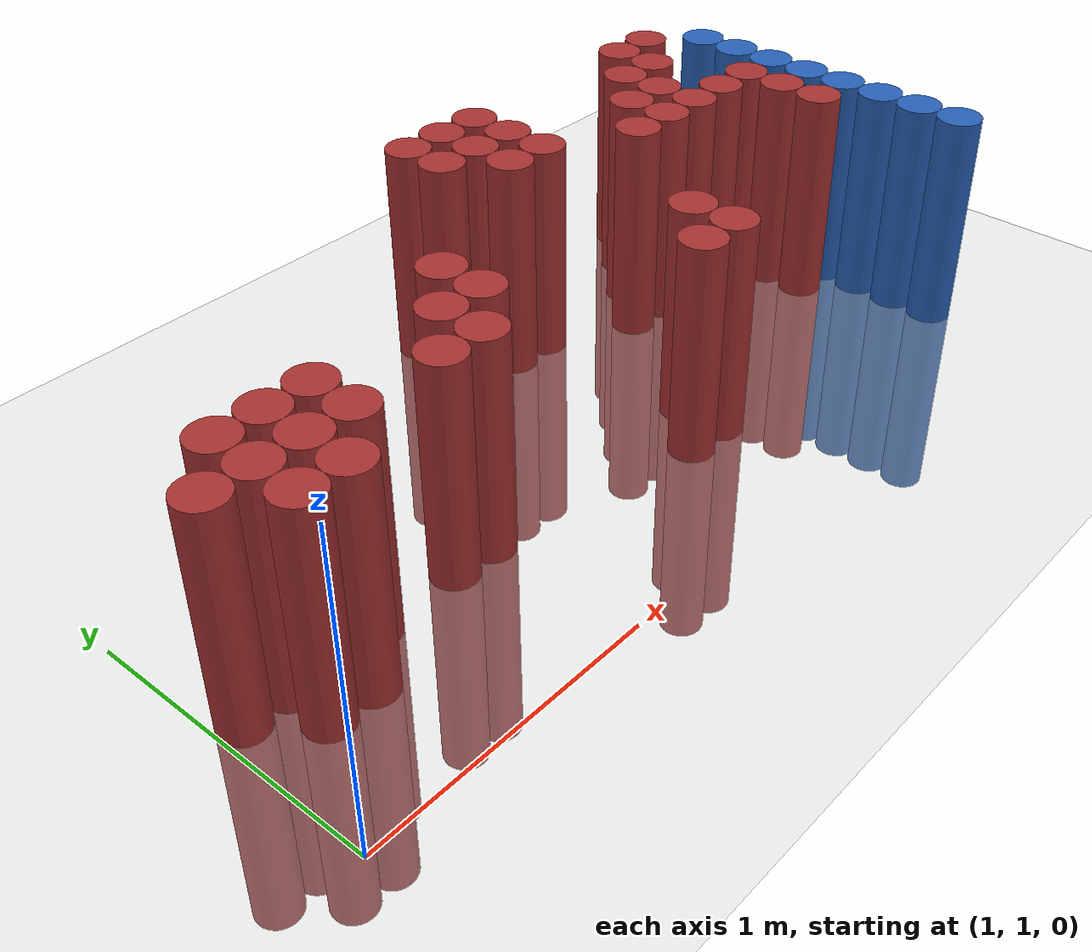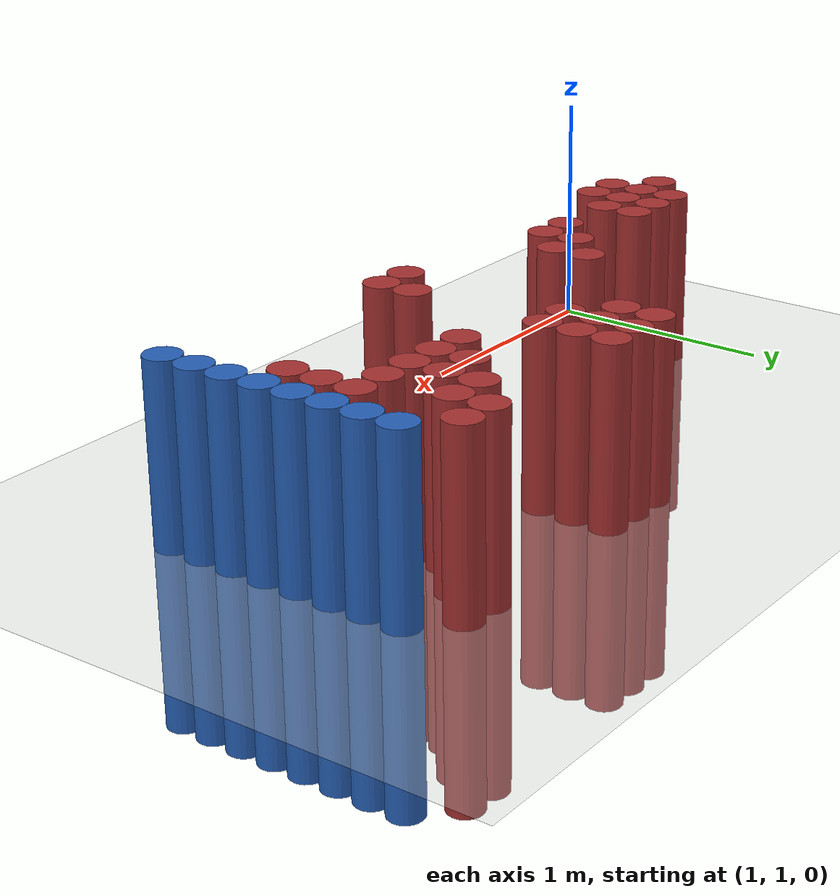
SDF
<sdf version="1.6">
 <world name="default">
  <model name="ground_plane">
   <static>1</static>
   <link name="link">
    <collision name="collision">
     <geometry><plane><normal>0 0 1</normal><size>100 100</size></plane></geometry>
     <surface><friction><ode><mu>100</mu><mu2>50</mu2></ode></friction></surface>
    </collision>
    <visual name="visual">
     <cast_shadows>0</cast_shadows>
     <geometry><plane><normal>0 0 1</normal><size>100 100</size></plane></geometry>
     <material>
      <script><uri>file://media/materials/scripts/gazebo.material</uri><name>Gazebo/Grey</name></script>
     </material>
    </visual>
   </link>
  </model>
  <model name="unit_cylinder_132">
   <static>1</static>
   <pose>3.925000 1.375000 0.000000 0.000000 0.000000 0.000000</pose>
   <link name="link">
    <inertial>
     <mass>1</mass>
     <inertia><ixx>0.145833</ixx><ixy>0</ixy><ixz>0</ixz><iyy>0.145833</iyy><iyz>0</iyz><izz>0.125</izz></inertia>
    </inertial>
    <collision name="collision">
     <geometry><cylinder><radius>0.075000</radius><length>1.5</length></cylinder></geometry>
    </collision>
    <visual name="visual">
     <geometry><cylinder><radius>0.075000</radius><length>1.5</length></cylinder></geometry>
     <material>
      <ambient>0.152000 0.379000 0.720000 1</ambient>
      <diffuse>0.152000 0.379000 0.720000 1</diffuse>
     </material>
     <material>
      <script><name>Gazebo/Grey</name><uri>file://media/materials/scripts/gazebo.material</uri></script>
     </material>
    </visual>
   </link>
  </model>
  <model name="unit_cylinder_134">
   <static>1</static>
   <pose>3.925000 1.525000 0.000000 0.000000 0.000000 0.000000</pose>
   <link name="link">
    <inertial>
     <mass>1</mass>
     <inertia><ixx>0.145833</ixx><ixy>0</ixy><ixz>0</ixz><iyy>0.145833</iyy><iyz>0</iyz><izz>0.125</izz></inertia>
    </inertial>
    <collision name="collision">
     <geometry><cylinder><radius>0.075000</radius><length>1.5</length></cylinder></geometry>
    </collision>
    <visual name="visual">
     <geometry><cylinder><radius>0.075000</radius><length>1.5</length></cylinder></geometry>
     <material>
      <ambient>0.152000 0.379000 0.720000 1</ambient>
      <diffuse>0.152000 0.379000 0.720000 1</diffuse>
     </material>
     <material>
      <script><name>Gazebo/Grey</name><uri>file://media/materials/scripts/gazebo.material</uri></script>
     </material>
    </visual>
   </link>
  </model>
  <model name="unit_cylinder_136">
   <static>1</static>
   <pose>3.925000 1.675000 0.000000 0.000000 0.000000 0.000000</pose>
   <link name="link">
    <inertial>
     <mass>1</mass>
     <inertia><ixx>0.145833</ixx><ixy>0</ixy><ixz>0</ixz><iyy>0.145833</iyy><iyz>0</iyz><izz>0.125</izz></inertia>
    </inertial>
    <collision name="collision">
     <geometry><cylinder><radius>0.075000</radius><length>1.5</length></cylinder></geometry>
    </collision>
    <visual name="visual">
     <geometry><cylinder><radius>0.075000</radius><length>1.5</length></cylinder></geometry>
     <material>
      <ambient>0.152000 0.379000 0.720000 1</ambient>
      <diffuse>0.152000 0.379000 0.720000 1</diffuse>
     </material>
     <material>
      <script><name>Gazebo/Grey</name><uri>file://media/materials/scripts/gazebo.material</uri></script>
     </material>
    </visual>
   </link>
  </model>
  <model name="unit_cylinder_138">
   <static>1</static>
   <pose>3.925000 1.825000 0.000000 0.000000 0.000000 0.000000</pose>
   <link name="link">
    <inertial>
     <mass>1</mass>
     <inertia><ixx>0.145833</ixx><ixy>0</ixy><ixz>0</ixz><iyy>0.145833</iyy><iyz>0</iyz><izz>0.125</izz></inertia>
    </inertial>
    <collision name="collision">
     <geometry><cylinder><radius>0.075000</radius><length>1.5</length></cylinder></geometry>
    </collision>
    <visual name="visual">
     <geometry><cylinder><radius>0.075000</radius><length>1.5</length></cylinder></geometry>
     <material>
      <ambient>0.152000 0.379000 0.720000 1</ambient>
      <diffuse>0.152000 0.379000 0.720000 1</diffuse>
     </material>
     <material>
      <script><name>Gazebo/Grey</name><uri>file://media/materials/scripts/gazebo.material</uri></script>
     </material>
    </visual>
   </link>
  </model>
  <model name="unit_cylinder_140">
   <static>1</static>
   <pose>3.925000 1.975000 0.000000 0.000000 0.000000 0.000000</pose>
   <link name="link">
    <inertial>
     <mass>1</mass>
     <inertia><ixx>0.145833</ixx><ixy>0</ixy><ixz>0</ixz><iyy>0.145833</iyy><iyz>0</iyz><izz>0.125</izz></inertia>
    </inertial>
    <collision name="collision">
     <geometry><cylinder><radius>0.075000</radius><length>1.5</length></cylinder></geometry>
    </collision>
    <visual name="visual">
     <geometry><cylinder><radius>0.075000</radius><length>1.5</length></cylinder></geometry>
     <material>
      <ambient>0.152000 0.379000 0.720000 1</ambient>
      <diffuse>0.152000 0.379000 0.720000 1</diffuse>
     </material>
     <material>
      <script><name>Gazebo/Grey</name><uri>file://media/materials/scripts/gazebo.material</uri></script>
     </material>
    </visual>
   </link>
  </model>
  <model name="unit_cylinder_142">
   <static>1</static>
   <pose>3.925000 2.125000 0.000000 0.000000 0.000000 0.000000</pose>
   <link name="link">
    <inertial>
     <mass>1</mass>
     <inertia><ixx>0.145833</ixx><ixy>0</ixy><ixz>0</ixz><iyy>0.145833</iyy><iyz>0</iyz><izz>0.125</izz></inertia>
    </inertial>
    <collision name="collision">
     <geometry><cylinder><radius>0.075000</radius><length>1.5</length></cylinder></geometry>
    </collision>
    <visual name="visual">
     <geometry><cylinder><radius>0.075000</radius><length>1.5</length></cylinder></geometry>
     <material>
      <ambient>0.152000 0.379000 0.720000 1</ambient>
      <diffuse>0.152000 0.379000 0.720000 1</diffuse>
     </material>
     <material>
      <script><name>Gazebo/Grey</name><uri>file://media/materials/scripts/gazebo.material</uri></script>
     </material>
    </visual>
   </link>
  </model>
  <model name="unit_cylinder_144">
   <static>1</static>
   <pose>3.925000 2.275000 0.000000 0.000000 0.000000 0.000000</pose>
   <link name="link">
    <inertial>
     <mass>1</mass>
     <inertia><ixx>0.145833</ixx><ixy>0</ixy><ixz>0</ixz><iyy>0.145833</iyy><iyz>0</iyz><izz>0.125</izz></inertia>
    </inertial>
    <collision name="collision">
     <geometry><cylinder><radius>0.075000</radius><length>1.5</length></cylinder></geometry>
    </collision>
    <visual name="visual">
     <geometry><cylinder><radius>0.075000</radius><length>1.5</length></cylinder></geometry>
     <material>
      <ambient>0.152000 0.379000 0.720000 1</ambient>
      <diffuse>0.152000 0.379000 0.720000 1</diffuse>
     </material>
     <material>
      <script><name>Gazebo/Grey</name><uri>file://media/materials/scripts/gazebo.material</uri></script>
     </material>
    </visual>
   </link>
  </model>
  <model name="unit_cylinder_363">
   <static>1</static>
   <pose>1.075000 1.525000 0.000000 0.000000 0.000000 0.000000</pose>
   <link name="link">
    <inertial>
     <mass>1</mass>
     <inertia><ixx>0.145833</ixx><ixy>0</ixy><ixz>0</ixz><iyy>0.145833</iyy><iyz>0</iyz><izz>0.125</izz></inertia>
    </inertial>
    <collision name="collision">
     <geometry><cylinder><radius>0.075000</radius><length>1.5</length></cylinder></geometry>
    </collision>
    <visual name="visual">
     <geometry><cylinder><radius>0.075000</radius><length>1.5</length></cylinder></geometry>
     <material>
      <ambient>0.648000 0.192000 0.192000 1</ambient>
      <diffuse>0.648000 0.192000 0.192000 1</diffuse>
     </material>
     <material>
      <script><name>Gazebo/Grey</name><uri>file://media/materials/scripts/gazebo.material</uri></script>
     </material>
    </visual>
   </link>
  </model>
  <model name="unit_cylinder_372">
   <static>1</static>
   <pose>1.225000 1.375000 0.000000 0.000000 0.000000 0.000000</pose>
   <link name="link">
    <inertial>
     <mass>1</mass>
     <inertia><ixx>0.145833</ixx><ixy>0</ixy><ixz>0</ixz><iyy>0.145833</iyy><iyz>0</iyz><izz>0.125</izz></inertia>
    </inertial>
    <collision name="collision">
     <geometry><cylinder><radius>0.075000</radius><length>1.5</length></cylinder></geometry>
    </collision>
    <visual name="visual">
     <geometry><cylinder><radius>0.075000</radius><length>1.5</length></cylinder></geometry>
     <material>
      <ambient>0.648000 0.192000 0.192000 1</ambient>
      <diffuse>0.648000 0.192000 0.192000 1</diffuse>
     </material>
     <material>
      <script><name>Gazebo/Grey</name><uri>file://media/materials/scripts/gazebo.material</uri></script>
     </material>
    </visual>
   </link>
  </model>
  <model name="unit_cylinder_373">
   <static>1</static>
   <pose>1.225000 1.525000 0.000000 0.000000 0.000000 0.000000</pose>
   <link name="link">
    <inertial>
     <mass>1</mass>
     <inertia><ixx>0.145833</ixx><ixy>0</ixy><ixz>0</ixz><iyy>0.145833</iyy><iyz>0</iyz><izz>0.125</izz></inertia>
    </inertial>
    <collision name="collision">
     <geometry><cylinder><radius>0.075000</radius><length>1.5</length></cylinder></geometry>
    </collision>
    <visual name="visual">
     <geometry><cylinder><radius>0.075000</radius><length>1.5</length></cylinder></geometry>
     <material>
      <ambient>0.648000 0.192000 0.192000 1</ambient>
      <diffuse>0.648000 0.192000 0.192000 1</diffuse>
     </material>
     <material>
      <script><name>Gazebo/Grey</name><uri>file://media/materials/scripts/gazebo.material</uri></script>
     </material>
    </visual>
   </link>
  </model>
  <model name="unit_cylinder_374">
   <static>1</static>
   <pose>1.225000 1.675000 0.000000 0.000000 0.000000 0.000000</pose>
   <link name="link">
    <inertial>
     <mass>1</mass>
     <inertia><ixx>0.145833</ixx><ixy>0</ixy><ixz>0</ixz><iyy>0.145833</iyy><iyz>0</iyz><izz>0.125</izz></inertia>
    </inertial>
    <collision name="collision">
     <geometry><cylinder><radius>0.075000</radius><length>1.5</length></cylinder></geometry>
    </collision>
    <visual name="visual">
     <geometry><cylinder><radius>0.075000</radius><length>1.5</length></cylinder></geometry>
     <material>
      <ambient>0.648000 0.192000 0.192000 1</ambient>
      <diffuse>0.648000 0.192000 0.192000 1</diffuse>
     </material>
     <material>
      <script><name>Gazebo/Grey</name><uri>file://media/materials/scripts/gazebo.material</uri></script>
     </material>
    </visual>
   </link>
  </model>
  <model name="unit_cylinder_380">
   <static>1</static>
   <pose>1.375000 1.375000 0.000000 0.000000 0.000000 0.000000</pose>
   <link name="link">
    <inertial>
     <mass>1</mass>
     <inertia><ixx>0.145833</ixx><ixy>0</ixy><ixz>0</ixz><iyy>0.145833</iyy><iyz>0</iyz><izz>0.125</izz></inertia>
    </inertial>
    <collision name="collision">
     <geometry><cylinder><radius>0.075000</radius><length>1.5</length></cylinder></geometry>
    </collision>
    <visual name="visual">
     <geometry><cylinder><radius>0.075000</radius><length>1.5</length></cylinder></geometry>
     <material>
      <ambient>0.648000 0.192000 0.192000 1</ambient>
      <diffuse>0.648000 0.192000 0.192000 1</diffuse>
     </material>
     <material>
      <script><name>Gazebo/Grey</name><uri>file://media/materials/scripts/gazebo.material</uri></script>
     </material>
    </visual>
   </link>
  </model>
  <model name="unit_cylinder_381">
   <static>1</static>
   <pose>1.375000 1.525000 0.000000 0.000000 0.000000 0.000000</pose>
   <link name="link">
    <inertial>
     <mass>1</mass>
     <inertia><ixx>0.145833</ixx><ixy>0</ixy><ixz>0</ixz><iyy>0.145833</iyy><iyz>0</iyz><izz>0.125</izz></inertia>
    </inertial>
    <collision name="collision">
     <geometry><cylinder><radius>0.075000</radius><length>1.5</length></cylinder></geometry>
    </collision>
    <visual name="visual">
     <geometry><cylinder><radius>0.075000</radius><length>1.5</length></cylinder></geometry>
     <material>
      <ambient>0.648000 0.192000 0.192000 1</ambient>
      <diffuse>0.648000 0.192000 0.192000 1</diffuse>
     </material>
     <material>
      <script><name>Gazebo/Grey</name><uri>file://media/materials/scripts/gazebo.material</uri></script>
     </material>
    </visual>
   </link>
  </model>
  <model name="unit_cylinder_382">
   <static>1</static>
   <pose>1.375000 1.675000 0.000000 0.000000 0.000000 0.000000</pose>
   <link name="link">
    <inertial>
     <mass>1</mass>
     <inertia><ixx>0.145833</ixx><ixy>0</ixy><ixz>0</ixz><iyy>0.145833</iyy><iyz>0</iyz><izz>0.125</izz></inertia>
    </inertial>
    <collision name="collision">
     <geometry><cylinder><radius>0.075000</radius><length>1.5</length></cylinder></geometry>
    </collision>
    <visual name="visual">
     <geometry><cylinder><radius>0.075000</radius><length>1.5</length></cylinder></geometry>
     <material>
      <ambient>0.648000 0.192000 0.192000 1</ambient>
      <diffuse>0.648000 0.192000 0.192000 1</diffuse>
     </material>
     <material>
      <script><name>Gazebo/Grey</name><uri>file://media/materials/scripts/gazebo.material</uri></script>
     </material>
    </visual>
   </link>
  </model>
  <model name="unit_cylinder_384">
   <static>1</static>
   <pose>1.525000 1.525000 0.000000 0.000000 0.000000 0.000000</pose>
   <link name="link">
    <inertial>
     <mass>1</mass>
     <inertia><ixx>0.145833</ixx><ixy>0</ixy><ixz>0</ixz><iyy>0.145833</iyy><iyz>0</iyz><izz>0.125</izz></inertia>
    </inertial>
    <collision name="collision">
     <geometry><cylinder><radius>0.075000</radius><length>1.5</length></cylinder></geometry>
    </collision>
    <visual name="visual">
     <geometry><cylinder><radius>0.075000</radius><length>1.5</length></cylinder></geometry>
     <material>
      <ambient>0.648000 0.192000 0.192000 1</ambient>
      <diffuse>0.648000 0.192000 0.192000 1</diffuse>
     </material>
     <material>
      <script><name>Gazebo/Grey</name><uri>file://media/materials/scripts/gazebo.material</uri></script>
     </material>
    </visual>
   </link>
  </model>
  <model name="unit_cylinder_385">
   <static>1</static>
   <pose>1.525000 1.675000 0.000000 0.000000 0.000000 0.000000</pose>
   <link name="link">
    <inertial>
     <mass>1</mass>
     <inertia><ixx>0.145833</ixx><ixy>0</ixy><ixz>0</ixz><iyy>0.145833</iyy><iyz>0</iyz><izz>0.125</izz></inertia>
    </inertial>
    <collision name="collision">
     <geometry><cylinder><radius>0.075000</radius><length>1.5</length></cylinder></geometry>
    </collision>
    <visual name="visual">
     <geometry><cylinder><radius>0.075000</radius><length>1.5</length></cylinder></geometry>
     <material>
      <ambient>0.648000 0.192000 0.192000 1</ambient>
      <diffuse>0.648000 0.192000 0.192000 1</diffuse>
     </material>
     <material>
      <script><name>Gazebo/Grey</name><uri>file://media/materials/scripts/gazebo.material</uri></script>
     </material>
    </visual>
   </link>
  </model>
  <model name="unit_cylinder_394">
   <static>1</static>
   <pose>1.825000 1.525000 0.000000 0.000000 0.000000 0.000000</pose>
   <link name="link">
    <inertial>
     <mass>1</mass>
     <inertia><ixx>0.145833</ixx><ixy>0</ixy><ixz>0</ixz><iyy>0.145833</iyy><iyz>0</iyz><izz>0.125</izz></inertia>
    </inertial>
    <collision name="collision">
     <geometry><cylinder><radius>0.075000</radius><length>1.5</length></cylinder></geometry>
    </collision>
    <visual name="visual">
     <geometry><cylinder><radius>0.075000</radius><length>1.5</length></cylinder></geometry>
     <material>
      <ambient>0.648000 0.192000 0.192000 1</ambient>
      <diffuse>0.648000 0.192000 0.192000 1</diffuse>
     </material>
     <material>
      <script><name>Gazebo/Grey</name><uri>file://media/materials/scripts/gazebo.material</uri></script>
     </material>
    </visual>
   </link>
  </model>
  <model name="unit_cylinder_398">
   <static>1</static>
   <pose>1.975000 1.525000 0.000000 0.000000 0.000000 0.000000</pose>
   <link name="link">
    <inertial>
     <mass>1</mass>
     <inertia><ixx>0.145833</ixx><ixy>0</ixy><ixz>0</ixz><iyy>0.145833</iyy><iyz>0</iyz><izz>0.125</izz></inertia>
    </inertial>
    <collision name="collision">
     <geometry><cylinder><radius>0.075000</radius><length>1.5</length></cylinder></geometry>
    </collision>
    <visual name="visual">
     <geometry><cylinder><radius>0.075000</radius><length>1.5</length></cylinder></geometry>
     <material>
      <ambient>0.648000 0.192000 0.192000 1</ambient>
      <diffuse>0.648000 0.192000 0.192000 1</diffuse>
     </material>
     <material>
      <script><name>Gazebo/Grey</name><uri>file://media/materials/scripts/gazebo.material</uri></script>
     </material>
    </visual>
   </link>
  </model>
  <model name="unit_cylinder_399">
   <static>1</static>
   <pose>1.975000 1.675000 0.000000 0.000000 0.000000 0.000000</pose>
   <link name="link">
    <inertial>
     <mass>1</mass>
     <inertia><ixx>0.145833</ixx><ixy>0</ixy><ixz>0</ixz><iyy>0.145833</iyy><iyz>0</iyz><izz>0.125</izz></inertia>
    </inertial>
    <collision name="collision">
     <geometry><cylinder><radius>0.075000</radius><length>1.5</length></cylinder></geometry>
    </collision>
    <visual name="visual">
     <geometry><cylinder><radius>0.075000</radius><length>1.5</length></cylinder></geometry>
     <material>
      <ambient>0.648000 0.192000 0.192000 1</ambient>
      <diffuse>0.648000 0.192000 0.192000 1</diffuse>
     </material>
     <material>
      <script><name>Gazebo/Grey</name><uri>file://media/materials/scripts/gazebo.material</uri></script>
     </material>
    </visual>
   </link>
  </model>
  <model name="unit_cylinder_401">
   <static>1</static>
   <pose>2.125000 1.675000 0.000000 0.000000 0.000000 0.000000</pose>
   <link name="link">
    <inertial>
     <mass>1</mass>
     <inertia><ixx>0.145833</ixx><ixy>0</ixy><ixz>0</ixz><iyy>0.145833</iyy><iyz>0</iyz><izz>0.125</izz></inertia>
    </inertial>
    <collision name="collision">
     <geometry><cylinder><radius>0.075000</radius><length>1.5</length></cylinder></geometry>
    </collision>
    <visual name="visual">
     <geometry><cylinder><radius>0.075000</radius><length>1.5</length></cylinder></geometry>
     <material>
      <ambient>0.648000 0.192000 0.192000 1</ambient>
      <diffuse>0.648000 0.192000 0.192000 1</diffuse>
     </material>
     <material>
      <script><name>Gazebo/Grey</name><uri>file://media/materials/scripts/gazebo.material</uri></script>
     </material>
    </visual>
   </link>
  </model>
  <model name="unit_cylinder_402">
   <static>1</static>
   <pose>2.125000 1.825000 0.000000 0.000000 0.000000 0.000000</pose>
   <link name="link">
    <inertial>
     <mass>1</mass>
     <inertia><ixx>0.145833</ixx><ixy>0</ixy><ixz>0</ixz><iyy>0.145833</iyy><iyz>0</iyz><izz>0.125</izz></inertia>
    </inertial>
    <collision name="collision">
     <geometry><cylinder><radius>0.075000</radius><length>1.5</length></cylinder></geometry>
    </collision>
    <visual name="visual">
     <geometry><cylinder><radius>0.075000</radius><length>1.5</length></cylinder></geometry>
     <material>
      <ambient>0.648000 0.192000 0.192000 1</ambient>
      <diffuse>0.648000 0.192000 0.192000 1</diffuse>
     </material>
     <material>
      <script><name>Gazebo/Grey</name><uri>file://media/materials/scripts/gazebo.material</uri></script>
     </material>
    </visual>
   </link>
  </model>
  <model name="unit_cylinder_414">
   <static>1</static>
   <pose>2.575000 2.275000 0.000000 0.000000 0.000000 0.000000</pose>
   <link name="link">
    <inertial>
     <mass>1</mass>
     <inertia><ixx>0.145833</ixx><ixy>0</ixy><ixz>0</ixz><iyy>0.145833</iyy><iyz>0</iyz><izz>0.125</izz></inertia>
    </inertial>
    <collision name="collision">
     <geometry><cylinder><radius>0.075000</radius><length>1.5</length></cylinder></geometry>
    </collision>
    <visual name="visual">
     <geometry><cylinder><radius>0.075000</radius><length>1.5</length></cylinder></geometry>
     <material>
      <ambient>0.648000 0.192000 0.192000 1</ambient>
      <diffuse>0.648000 0.192000 0.192000 1</diffuse>
     </material>
     <material>
      <script><name>Gazebo/Grey</name><uri>file://media/materials/scripts/gazebo.material</uri></script>
     </material>
    </visual>
   </link>
  </model>
  <model name="unit_cylinder_415">
   <static>1</static>
   <pose>2.575000 2.425000 0.000000 0.000000 0.000000 0.000000</pose>
   <link name="link">
    <inertial>
     <mass>1</mass>
     <inertia><ixx>0.145833</ixx><ixy>0</ixy><ixz>0</ixz><iyy>0.145833</iyy><iyz>0</iyz><izz>0.125</izz></inertia>
    </inertial>
    <collision name="collision">
     <geometry><cylinder><radius>0.075000</radius><length>1.5</length></cylinder></geometry>
    </collision>
    <visual name="visual">
     <geometry><cylinder><radius>0.075000</radius><length>1.5</length></cylinder></geometry>
     <material>
      <ambient>0.648000 0.192000 0.192000 1</ambient>
      <diffuse>0.648000 0.192000 0.192000 1</diffuse>
     </material>
     <material>
      <script><name>Gazebo/Grey</name><uri>file://media/materials/scripts/gazebo.material</uri></script>
     </material>
    </visual>
   </link>
  </model>
  <model name="unit_cylinder_420">
   <static>1</static>
   <pose>2.725000 1.375000 0.000000 0.000000 0.000000 0.000000</pose>
   <link name="link">
    <inertial>
     <mass>1</mass>
     <inertia><ixx>0.145833</ixx><ixy>0</ixy><ixz>0</ixz><iyy>0.145833</iyy><iyz>0</iyz><izz>0.125</izz></inertia>
    </inertial>
    <collision name="collision">
     <geometry><cylinder><radius>0.075000</radius><length>1.5</length></cylinder></geometry>
    </collision>
    <visual name="visual">
     <geometry><cylinder><radius>0.075000</radius><length>1.5</length></cylinder></geometry>
     <material>
      <ambient>0.648000 0.192000 0.192000 1</ambient>
      <diffuse>0.648000 0.192000 0.192000 1</diffuse>
     </material>
     <material>
      <script><name>Gazebo/Grey</name><uri>file://media/materials/scripts/gazebo.material</uri></script>
     </material>
    </visual>
   </link>
  </model>
  <model name="unit_cylinder_421">
   <static>1</static>
   <pose>2.725000 2.125000 0.000000 0.000000 0.000000 0.000000</pose>
   <link name="link">
    <inertial>
     <mass>1</mass>
     <inertia><ixx>0.145833</ixx><ixy>0</ixy><ixz>0</ixz><iyy>0.145833</iyy><iyz>0</iyz><izz>0.125</izz></inertia>
    </inertial>
    <collision name="collision">
     <geometry><cylinder><radius>0.075000</radius><length>1.5</length></cylinder></geometry>
    </collision>
    <visual name="visual">
     <geometry><cylinder><radius>0.075000</radius><length>1.5</length></cylinder></geometry>
     <material>
      <ambient>0.648000 0.192000 0.192000 1</ambient>
      <diffuse>0.648000 0.192000 0.192000 1</diffuse>
     </material>
     <material>
      <script><name>Gazebo/Grey</name><uri>file://media/materials/scripts/gazebo.material</uri></script>
     </material>
    </visual>
   </link>
  </model>
  <model name="unit_cylinder_422">
   <static>1</static>
   <pose>2.725000 2.275000 0.000000 0.000000 0.000000 0.000000</pose>
   <link name="link">
    <inertial>
     <mass>1</mass>
     <inertia><ixx>0.145833</ixx><ixy>0</ixy><ixz>0</ixz><iyy>0.145833</iyy><iyz>0</iyz><izz>0.125</izz></inertia>
    </inertial>
    <collision name="collision">
     <geometry><cylinder><radius>0.075000</radius><length>1.5</length></cylinder></geometry>
    </collision>
    <visual name="visual">
     <geometry><cylinder><radius>0.075000</radius><length>1.5</length></cylinder></geometry>
     <material>
      <ambient>0.648000 0.192000 0.192000 1</ambient>
      <diffuse>0.648000 0.192000 0.192000 1</diffuse>
     </material>
     <material>
      <script><name>Gazebo/Grey</name><uri>file://media/materials/scripts/gazebo.material</uri></script>
     </material>
    </visual>
   </link>
  </model>
  <model name="unit_cylinder_423">
   <static>1</static>
   <pose>2.725000 2.425000 0.000000 0.000000 0.000000 0.000000</pose>
   <link name="link">
    <inertial>
     <mass>1</mass>
     <inertia><ixx>0.145833</ixx><ixy>0</ixy><ixz>0</ixz><iyy>0.145833</iyy><iyz>0</iyz><izz>0.125</izz></inertia>
    </inertial>
    <collision name="collision">
     <geometry><cylinder><radius>0.075000</radius><length>1.5</length></cylinder></geometry>
    </collision>
    <visual name="visual">
     <geometry><cylinder><radius>0.075000</radius><length>1.5</length></cylinder></geometry>
     <material>
      <ambient>0.648000 0.192000 0.192000 1</ambient>
      <diffuse>0.648000 0.192000 0.192000 1</diffuse>
     </material>
     <material>
      <script><name>Gazebo/Grey</name><uri>file://media/materials/scripts/gazebo.material</uri></script>
     </material>
    </visual>
   </link>
  </model>
  <model name="unit_cylinder_429">
   <static>1</static>
   <pose>2.875000 1.375000 0.000000 0.000000 0.000000 0.000000</pose>
   <link name="link">
    <inertial>
     <mass>1</mass>
     <inertia><ixx>0.145833</ixx><ixy>0</ixy><ixz>0</ixz><iyy>0.145833</iyy><iyz>0</iyz><izz>0.125</izz></inertia>
    </inertial>
    <collision name="collision">
     <geometry><cylinder><radius>0.075000</radius><length>1.5</length></cylinder></geometry>
    </collision>
    <visual name="visual">
     <geometry><cylinder><radius>0.075000</radius><length>1.5</length></cylinder></geometry>
     <material>
      <ambient>0.648000 0.192000 0.192000 1</ambient>
      <diffuse>0.648000 0.192000 0.192000 1</diffuse>
     </material>
     <material>
      <script><name>Gazebo/Grey</name><uri>file://media/materials/scripts/gazebo.material</uri></script>
     </material>
    </visual>
   </link>
  </model>
  <model name="unit_cylinder_430">
   <static>1</static>
   <pose>2.875000 1.525000 0.000000 0.000000 0.000000 0.000000</pose>
   <link name="link">
    <inertial>
     <mass>1</mass>
     <inertia><ixx>0.145833</ixx><ixy>0</ixy><ixz>0</ixz><iyy>0.145833</iyy><iyz>0</iyz><izz>0.125</izz></inertia>
    </inertial>
    <collision name="collision">
     <geometry><cylinder><radius>0.075000</radius><length>1.5</length></cylinder></geometry>
    </collision>
    <visual name="visual">
     <geometry><cylinder><radius>0.075000</radius><length>1.5</length></cylinder></geometry>
     <material>
      <ambient>0.648000 0.192000 0.192000 1</ambient>
      <diffuse>0.648000 0.192000 0.192000 1</diffuse>
     </material>
     <material>
      <script><name>Gazebo/Grey</name><uri>file://media/materials/scripts/gazebo.material</uri></script>
     </material>
    </visual>
   </link>
  </model>
  <model name="unit_cylinder_431">
   <static>1</static>
   <pose>2.875000 2.125000 0.000000 0.000000 0.000000 0.000000</pose>
   <link name="link">
    <inertial>
     <mass>1</mass>
     <inertia><ixx>0.145833</ixx><ixy>0</ixy><ixz>0</ixz><iyy>0.145833</iyy><iyz>0</iyz><izz>0.125</izz></inertia>
    </inertial>
    <collision name="collision">
     <geometry><cylinder><radius>0.075000</radius><length>1.5</length></cylinder></geometry>
    </collision>
    <visual name="visual">
     <geometry><cylinder><radius>0.075000</radius><length>1.5</length></cylinder></geometry>
     <material>
      <ambient>0.648000 0.192000 0.192000 1</ambient>
      <diffuse>0.648000 0.192000 0.192000 1</diffuse>
     </material>
     <material>
      <script><name>Gazebo/Grey</name><uri>file://media/materials/scripts/gazebo.material</uri></script>
     </material>
    </visual>
   </link>
  </model>
  <model name="unit_cylinder_432">
   <static>1</static>
   <pose>2.875000 2.275000 0.000000 0.000000 0.000000 0.000000</pose>
   <link name="link">
    <inertial>
     <mass>1</mass>
     <inertia><ixx>0.145833</ixx><ixy>0</ixy><ixz>0</ixz><iyy>0.145833</iyy><iyz>0</iyz><izz>0.125</izz></inertia>
    </inertial>
    <collision name="collision">
     <geometry><cylinder><radius>0.075000</radius><length>1.5</length></cylinder></geometry>
    </collision>
    <visual name="visual">
     <geometry><cylinder><radius>0.075000</radius><length>1.5</length></cylinder></geometry>
     <material>
      <ambient>0.648000 0.192000 0.192000 1</ambient>
      <diffuse>0.648000 0.192000 0.192000 1</diffuse>
     </material>
     <material>
      <script><name>Gazebo/Grey</name><uri>file://media/materials/scripts/gazebo.material</uri></script>
     </material>
    </visual>
   </link>
  </model>
  <model name="unit_cylinder_433">
   <static>1</static>
   <pose>2.875000 2.425000 0.000000 0.000000 0.000000 0.000000</pose>
   <link name="link">
    <inertial>
     <mass>1</mass>
     <inertia><ixx>0.145833</ixx><ixy>0</ixy><ixz>0</ixz><iyy>0.145833</iyy><iyz>0</iyz><izz>0.125</izz></inertia>
    </inertial>
    <collision name="collision">
     <geometry><cylinder><radius>0.075000</radius><length>1.5</length></cylinder></geometry>
    </collision>
    <visual name="visual">
     <geometry><cylinder><radius>0.075000</radius><length>1.5</length></cylinder></geometry>
     <material>
      <ambient>0.648000 0.192000 0.192000 1</ambient>
      <diffuse>0.648000 0.192000 0.192000 1</diffuse>
     </material>
     <material>
      <script><name>Gazebo/Grey</name><uri>file://media/materials/scripts/gazebo.material</uri></script>
     </material>
    </visual>
   </link>
  </model>
  <model name="unit_cylinder_441">
   <static>1</static>
   <pose>3.175000 1.975000 0.000000 0.000000 0.000000 0.000000</pose>
   <link name="link">
    <inertial>
     <mass>1</mass>
     <inertia><ixx>0.145833</ixx><ixy>0</ixy><ixz>0</ixz><iyy>0.145833</iyy><iyz>0</iyz><izz>0.125</izz></inertia>
    </inertial>
    <collision name="collision">
     <geometry><cylinder><radius>0.075000</radius><length>1.5</length></cylinder></geometry>
    </collision>
    <visual name="visual">
     <geometry><cylinder><radius>0.075000</radius><length>1.5</length></cylinder></geometry>
     <material>
      <ambient>0.648000 0.192000 0.192000 1</ambient>
      <diffuse>0.648000 0.192000 0.192000 1</diffuse>
     </material>
     <material>
      <script><name>Gazebo/Grey</name><uri>file://media/materials/scripts/gazebo.material</uri></script>
     </material>
    </visual>
   </link>
  </model>
  <model name="unit_cylinder_444">
   <static>1</static>
   <pose>3.325000 1.975000 0.000000 0.000000 0.000000 0.000000</pose>
   <link name="link">
    <inertial>
     <mass>1</mass>
     <inertia><ixx>0.145833</ixx><ixy>0</ixy><ixz>0</ixz><iyy>0.145833</iyy><iyz>0</iyz><izz>0.125</izz></inertia>
    </inertial>
    <collision name="collision">
     <geometry><cylinder><radius>0.075000</radius><length>1.5</length></cylinder></geometry>
    </collision>
    <visual name="visual">
     <geometry><cylinder><radius>0.075000</radius><length>1.5</length></cylinder></geometry>
     <material>
      <ambient>0.648000 0.192000 0.192000 1</ambient>
      <diffuse>0.648000 0.192000 0.192000 1</diffuse>
     </material>
     <material>
      <script><name>Gazebo/Grey</name><uri>file://media/materials/scripts/gazebo.material</uri></script>
     </material>
    </visual>
   </link>
  </model>
  <model name="unit_cylinder_445">
   <static>1</static>
   <pose>3.325000 2.125000 0.000000 0.000000 0.000000 0.000000</pose>
   <link name="link">
    <inertial>
     <mass>1</mass>
     <inertia><ixx>0.145833</ixx><ixy>0</ixy><ixz>0</ixz><iyy>0.145833</iyy><iyz>0</iyz><izz>0.125</izz></inertia>
    </inertial>
    <collision name="collision">
     <geometry><cylinder><radius>0.075000</radius><length>1.5</length></cylinder></geometry>
    </collision>
    <visual name="visual">
     <geometry><cylinder><radius>0.075000</radius><length>1.5</length></cylinder></geometry>
     <material>
      <ambient>0.648000 0.192000 0.192000 1</ambient>
      <diffuse>0.648000 0.192000 0.192000 1</diffuse>
     </material>
     <material>
      <script><name>Gazebo/Grey</name><uri>file://media/materials/scripts/gazebo.material</uri></script>
     </material>
    </visual>
   </link>
  </model>
  <model name="unit_cylinder_446">
   <static>1</static>
   <pose>3.475000 1.975000 0.000000 0.000000 0.000000 0.000000</pose>
   <link name="link">
    <inertial>
     <mass>1</mass>
     <inertia><ixx>0.145833</ixx><ixy>0</ixy><ixz>0</ixz><iyy>0.145833</iyy><iyz>0</iyz><izz>0.125</izz></inertia>
    </inertial>
    <collision name="collision">
     <geometry><cylinder><radius>0.075000</radius><length>1.5</length></cylinder></geometry>
    </collision>
    <visual name="visual">
     <geometry><cylinder><radius>0.075000</radius><length>1.5</length></cylinder></geometry>
     <material>
      <ambient>0.648000 0.192000 0.192000 1</ambient>
      <diffuse>0.648000 0.192000 0.192000 1</diffuse>
     </material>
     <material>
      <script><name>Gazebo/Grey</name><uri>file://media/materials/scripts/gazebo.material</uri></script>
     </material>
    </visual>
   </link>
  </model>
  <model name="unit_cylinder_447">
   <static>1</static>
   <pose>3.475000 2.125000 0.000000 0.000000 0.000000 0.000000</pose>
   <link name="link">
    <inertial>
     <mass>1</mass>
     <inertia><ixx>0.145833</ixx><ixy>0</ixy><ixz>0</ixz><iyy>0.145833</iyy><iyz>0</iyz><izz>0.125</izz></inertia>
    </inertial>
    <collision name="collision">
     <geometry><cylinder><radius>0.075000</radius><length>1.5</length></cylinder></geometry>
    </collision>
    <visual name="visual">
     <geometry><cylinder><radius>0.075000</radius><length>1.5</length></cylinder></geometry>
     <material>
      <ambient>0.648000 0.192000 0.192000 1</ambient>
      <diffuse>0.648000 0.192000 0.192000 1</diffuse>
     </material>
     <material>
      <script><name>Gazebo/Grey</name><uri>file://media/materials/scripts/gazebo.material</uri></script>
     </material>
    </visual>
   </link>
  </model>
  <model name="unit_cylinder_448">
   <static>1</static>
   <pose>3.475000 2.275000 0.000000 0.000000 0.000000 0.000000</pose>
   <link name="link">
    <inertial>
     <mass>1</mass>
     <inertia><ixx>0.145833</ixx><ixy>0</ixy><ixz>0</ixz><iyy>0.145833</iyy><iyz>0</iyz><izz>0.125</izz></inertia>
    </inertial>
    <collision name="collision">
     <geometry><cylinder><radius>0.075000</radius><length>1.5</length></cylinder></geometry>
    </collision>
    <visual name="visual">
     <geometry><cylinder><radius>0.075000</radius><length>1.5</length></cylinder></geometry>
     <material>
      <ambient>0.648000 0.192000 0.192000 1</ambient>
      <diffuse>0.648000 0.192000 0.192000 1</diffuse>
     </material>
     <material>
      <script><name>Gazebo/Grey</name><uri>file://media/materials/scripts/gazebo.material</uri></script>
     </material>
    </visual>
   </link>
  </model>
  <model name="unit_cylinder_450">
   <static>1</static>
   <pose>3.625000 1.975000 0.000000 0.000000 0.000000 0.000000</pose>
   <link name="link">
    <inertial>
     <mass>1</mass>
     <inertia><ixx>0.145833</ixx><ixy>0</ixy><ixz>0</ixz><iyy>0.145833</iyy><iyz>0</iyz><izz>0.125</izz></inertia>
    </inertial>
    <collision name="collision">
     <geometry><cylinder><radius>0.075000</radius><length>1.5</length></cylinder></geometry>
    </collision>
    <visual name="visual">
     <geometry><cylinder><radius>0.075000</radius><length>1.5</length></cylinder></geometry>
     <material>
      <ambient>0.648000 0.192000 0.192000 1</ambient>
      <diffuse>0.648000 0.192000 0.192000 1</diffuse>
     </material>
     <material>
      <script><name>Gazebo/Grey</name><uri>file://media/materials/scripts/gazebo.material</uri></script>
     </material>
    </visual>
   </link>
  </model>
  <model name="unit_cylinder_451">
   <static>1</static>
   <pose>3.625000 2.275000 0.000000 0.000000 0.000000 0.000000</pose>
   <link name="link">
    <inertial>
     <mass>1</mass>
     <inertia><ixx>0.145833</ixx><ixy>0</ixy><ixz>0</ixz><iyy>0.145833</iyy><iyz>0</iyz><izz>0.125</izz></inertia>
    </inertial>
    <collision name="collision">
     <geometry><cylinder><radius>0.075000</radius><length>1.5</length></cylinder></geometry>
    </collision>
    <visual name="visual">
     <geometry><cylinder><radius>0.075000</radius><length>1.5</length></cylinder></geometry>
     <material>
      <ambient>0.648000 0.192000 0.192000 1</ambient>
      <diffuse>0.648000 0.192000 0.192000 1</diffuse>
     </material>
     <material>
      <script><name>Gazebo/Grey</name><uri>file://media/materials/scripts/gazebo.material</uri></script>
     </material>
    </visual>
   </link>
  </model>
  <model name="unit_cylinder_452">
   <static>1</static>
   <pose>3.625000 2.425000 0.000000 0.000000 0.000000 0.000000</pose>
   <link name="link">
    <inertial>
     <mass>1</mass>
     <inertia><ixx>0.145833</ixx><ixy>0</ixy><ixz>0</ixz><iyy>0.145833</iyy><iyz>0</iyz><izz>0.125</izz></inertia>
    </inertial>
    <collision name="collision">
     <geometry><cylinder><radius>0.075000</radius><length>1.5</length></cylinder></geometry>
    </collision>
    <visual name="visual">
     <geometry><cylinder><radius>0.075000</radius><length>1.5</length></cylinder></geometry>
     <material>
      <ambient>0.648000 0.192000 0.192000 1</ambient>
      <diffuse>0.648000 0.192000 0.192000 1</diffuse>
     </material>
     <material>
      <script><name>Gazebo/Grey</name><uri>file://media/materials/scripts/gazebo.material</uri></script>
     </material>
    </visual>
   </link>
  </model>
  <model name="unit_cylinder_464">
   <static>1</static>
   <pose>3.775000 1.675000 0.000000 0.000000 0.000000 0.000000</pose>
   <link name="link">
    <inertial>
     <mass>1</mass>
     <inertia><ixx>0.145833</ixx><ixy>0</ixy><ixz>0</ixz><iyy>0.145833</iyy><iyz>0</iyz><izz>0.125</izz></inertia>
    </inertial>
    <collision name="collision">
     <geometry><cylinder><radius>0.075000</radius><length>1.5</length></cylinder></geometry>
    </collision>
    <visual name="visual">
     <geometry><cylinder><radius>0.075000</radius><length>1.5</length></cylinder></geometry>
     <material>
      <ambient>0.648000 0.192000 0.192000 1</ambient>
      <diffuse>0.648000 0.192000 0.192000 1</diffuse>
     </material>
     <material>
      <script><name>Gazebo/Grey</name><uri>file://media/materials/scripts/gazebo.material</uri></script>
     </material>
    </visual>
   </link>
  </model>
  <model name="unit_cylinder_465">
   <static>1</static>
   <pose>3.775000 1.825000 0.000000 0.000000 0.000000 0.000000</pose>
   <link name="link">
    <inertial>
     <mass>1</mass>
     <inertia><ixx>0.145833</ixx><ixy>0</ixy><ixz>0</ixz><iyy>0.145833</iyy><iyz>0</iyz><izz>0.125</izz></inertia>
    </inertial>
    <collision name="collision">
     <geometry><cylinder><radius>0.075000</radius><length>1.5</length></cylinder></geometry>
    </collision>
    <visual name="visual">
     <geometry><cylinder><radius>0.075000</radius><length>1.5</length></cylinder></geometry>
     <material>
      <ambient>0.648000 0.192000 0.192000 1</ambient>
      <diffuse>0.648000 0.192000 0.192000 1</diffuse>
     </material>
     <material>
      <script><name>Gazebo/Grey</name><uri>file://media/materials/scripts/gazebo.material</uri></script>
     </material>
    </visual>
   </link>
  </model>
  <model name="unit_cylinder_466">
   <static>1</static>
   <pose>3.775000 1.975000 0.000000 0.000000 0.000000 0.000000</pose>
   <link name="link">
    <inertial>
     <mass>1</mass>
     <inertia><ixx>0.145833</ixx><ixy>0</ixy><ixz>0</ixz><iyy>0.145833</iyy><iyz>0</iyz><izz>0.125</izz></inertia>
    </inertial>
    <collision name="collision">
     <geometry><cylinder><radius>0.075000</radius><length>1.5</length></cylinder></geometry>
    </collision>
    <visual name="visual">
     <geometry><cylinder><radius>0.075000</radius><length>1.5</length></cylinder></geometry>
     <material>
      <ambient>0.648000 0.192000 0.192000 1</ambient>
      <diffuse>0.648000 0.192000 0.192000 1</diffuse>
     </material>
     <material>
      <script><name>Gazebo/Grey</name><uri>file://media/materials/scripts/gazebo.material</uri></script>
     </material>
    </visual>
   </link>
  </model>
  <model name="unit_cylinder_467">
   <static>1</static>
   <pose>3.775000 2.425000 0.000000 0.000000 0.000000 0.000000</pose>
   <link name="link">
    <inertial>
     <mass>1</mass>
     <inertia><ixx>0.145833</ixx><ixy>0</ixy><ixz>0</ixz><iyy>0.145833</iyy><iyz>0</iyz><izz>0.125</izz></inertia>
    </inertial>
    <collision name="collision">
     <geometry><cylinder><radius>0.075000</radius><length>1.5</length></cylinder></geometry>
    </collision>
    <visual name="visual">
     <geometry><cylinder><radius>0.075000</radius><length>1.5</length></cylinder></geometry>
     <material>
      <ambient>0.648000 0.192000 0.192000 1</ambient>
      <diffuse>0.648000 0.192000 0.192000 1</diffuse>
     </material>
     <material>
      <script><name>Gazebo/Grey</name><uri>file://media/materials/scripts/gazebo.material</uri></script>
     </material>
    </visual>
   </link>
  </model>
  <model name="unit_cylinder_499">
   <static>1</static>
   <pose>3.925000 1.225000 0.000000 0.000000 0.000000 0.000000</pose>
   <link name="link">
    <inertial>
     <mass>1</mass>
     <inertia><ixx>0.145833</ixx><ixy>0</ixy><ixz>0</ixz><iyy>0.145833</iyy><iyz>0</iyz><izz>0.125</izz></inertia>
    </inertial>
    <collision name="collision">
     <geometry><cylinder><radius>0.075000</radius><length>1.5</length></cylinder></geometry>
    </collision>
    <visual name="visual">
     <geometry><cylinder><radius>0.075000</radius><length>1.5</length></cylinder></geometry>
     <material>
      <ambient>0.152000 0.379000 0.720000 1</ambient>
      <diffuse>0.152000 0.379000 0.720000 1</diffuse>
     </material>
     <material>
      <script><name>Gazebo/Grey</name><uri>file://media/materials/scripts/gazebo.material</uri></script>
     </material>
    </visual>
   </link>
  </model>
  <model name="unit_cylinder_500">
   <static>1</static>
   <pose>3.925000 1.375000 0.000000 0.000000 0.000000 0.000000</pose>
   <link name="link">
    <inertial>
     <mass>1</mass>
     <inertia><ixx>0.145833</ixx><ixy>0</ixy><ixz>0</ixz><iyy>0.145833</iyy><iyz>0</iyz><izz>0.125</izz></inertia>
    </inertial>
    <collision name="collision">
     <geometry><cylinder><radius>0.075000</radius><length>1.5</length></cylinder></geometry>
    </collision>
    <visual name="visual">
     <geometry><cylinder><radius>0.075000</radius><length>1.5</length></cylinder></geometry>
     <material>
      <ambient>0.152000 0.379000 0.720000 1</ambient>
      <diffuse>0.152000 0.379000 0.720000 1</diffuse>
     </material>
     <material>
      <script><name>Gazebo/Grey</name><uri>file://media/materials/scripts/gazebo.material</uri></script>
     </material>
    </visual>
   </link>
  </model>
  <model name="unit_cylinder_501">
   <static>1</static>
   <pose>3.925000 1.525000 0.000000 0.000000 0.000000 0.000000</pose>
   <link name="link">
    <inertial>
     <mass>1</mass>
     <inertia><ixx>0.145833</ixx><ixy>0</ixy><ixz>0</ixz><iyy>0.145833</iyy><iyz>0</iyz><izz>0.125</izz></inertia>
    </inertial>
    <collision name="collision">
     <geometry><cylinder><radius>0.075000</radius><length>1.5</length></cylinder></geometry>
    </collision>
    <visual name="visual">
     <geometry><cylinder><radius>0.075000</radius><length>1.5</length></cylinder></geometry>
     <material>
      <ambient>0.152000 0.379000 0.720000 1</ambient>
      <diffuse>0.152000 0.379000 0.720000 1</diffuse>
     </material>
     <material>
      <script><name>Gazebo/Grey</name><uri>file://media/materials/scripts/gazebo.material</uri></script>
     </material>
    </visual>
   </link>
  </model>
  <model name="unit_cylinder_502">
   <static>1</static>
   <pose>3.925000 1.675000 0.000000 0.000000 0.000000 0.000000</pose>
   <link name="link">
    <inertial>
     <mass>1</mass>
     <inertia><ixx>0.145833</ixx><ixy>0</ixy><ixz>0</ixz><iyy>0.145833</iyy><iyz>0</iyz><izz>0.125</izz></inertia>
    </inertial>
    <collision name="collision">
     <geometry><cylinder><radius>0.075000</radius><length>1.5</length></cylinder></geometry>
    </collision>
    <visual name="visual">
     <geometry><cylinder><radius>0.075000</radius><length>1.5</length></cylinder></geometry>
     <material>
      <ambient>0.152000 0.379000 0.720000 1</ambient>
      <diffuse>0.152000 0.379000 0.720000 1</diffuse>
     </material>
     <material>
      <script><name>Gazebo/Grey</name><uri>file://media/materials/scripts/gazebo.material</uri></script>
     </material>
    </visual>
   </link>
  </model>
  <model name="unit_cylinder_503">
   <static>1</static>
   <pose>3.925000 1.825000 0.000000 0.000000 0.000000 0.000000</pose>
   <link name="link">
    <inertial>
     <mass>1</mass>
     <inertia><ixx>0.145833</ixx><ixy>0</ixy><ixz>0</ixz><iyy>0.145833</iyy><iyz>0</iyz><izz>0.125</izz></inertia>
    </inertial>
    <collision name="collision">
     <geometry><cylinder><radius>0.075000</radius><length>1.5</length></cylinder></geometry>
    </collision>
    <visual name="visual">
     <geometry><cylinder><radius>0.075000</radius><length>1.5</length></cylinder></geometry>
     <material>
      <ambient>0.152000 0.379000 0.720000 1</ambient>
      <diffuse>0.152000 0.379000 0.720000 1</diffuse>
     </material>
     <material>
      <script><name>Gazebo/Grey</name><uri>file://media/materials/scripts/gazebo.material</uri></script>
     </material>
    </visual>
   </link>
  </model>
  <model name="unit_cylinder_504">
   <static>1</static>
   <pose>3.925000 1.975000 0.000000 0.000000 0.000000 0.000000</pose>
   <link name="link">
    <inertial>
     <mass>1</mass>
     <inertia><ixx>0.145833</ixx><ixy>0</ixy><ixz>0</ixz><iyy>0.145833</iyy><iyz>0</iyz><izz>0.125</izz></inertia>
    </inertial>
    <collision name="collision">
     <geometry><cylinder><radius>0.075000</radius><length>1.5</length></cylinder></geometry>
    </collision>
    <visual name="visual">
     <geometry><cylinder><radius>0.075000</radius><length>1.5</length></cylinder></geometry>
     <material>
      <ambient>0.152000 0.379000 0.720000 1</ambient>
      <diffuse>0.152000 0.379000 0.720000 1</diffuse>
     </material>
     <material>
      <script><name>Gazebo/Grey</name><uri>file://media/materials/scripts/gazebo.material</uri></script>
     </material>
    </visual>
   </link>
  </model>
  <model name="unit_cylinder_505">
   <static>1</static>
   <pose>3.925000 2.125000 0.000000 0.000000 0.000000 0.000000</pose>
   <link name="link">
    <inertial>
     <mass>1</mass>
     <inertia><ixx>0.145833</ixx><ixy>0</ixy><ixz>0</ixz><iyy>0.145833</iyy><iyz>0</iyz><izz>0.125</izz></inertia>
    </inertial>
    <collision name="collision">
     <geometry><cylinder><radius>0.075000</radius><length>1.5</length></cylinder></geometry>
    </collision>
    <visual name="visual">
     <geometry><cylinder><radius>0.075000</radius><length>1.5</length></cylinder></geometry>
     <material>
      <ambient>0.152000 0.379000 0.720000 1</ambient>
      <diffuse>0.152000 0.379000 0.720000 1</diffuse>
     </material>
     <material>
      <script><name>Gazebo/Grey</name><uri>file://media/materials/scripts/gazebo.material</uri></script>
     </material>
    </visual>
   </link>
  </model>
  <model name="unit_cylinder_506">
   <static>1</static>
   <pose>3.925000 2.275000 0.000000 0.000000 0.000000 0.000000</pose>
   <link name="link">
    <inertial>
     <mass>1</mass>
     <inertia><ixx>0.145833</ixx><ixy>0</ixy><ixz>0</ixz><iyy>0.145833</iyy><iyz>0</iyz><izz>0.125</izz></inertia>
    </inertial>
    <collision name="collision">
     <geometry><cylinder><radius>0.075000</radius><length>1.5</length></cylinder></geometry>
    </collision>
    <visual name="visual">
     <geometry><cylinder><radius>0.075000</radius><length>1.5</length></cylinder></geometry>
     <material>
      <ambient>0.152000 0.379000 0.720000 1</ambient>
      <diffuse>0.152000 0.379000 0.720000 1</diffuse>
     </material>
     <material>
      <script><name>Gazebo/Grey</name><uri>file://media/materials/scripts/gazebo.material</uri></script>
     </material>
    </visual>
   </link>
  </model>
 </world>
</sdf>
